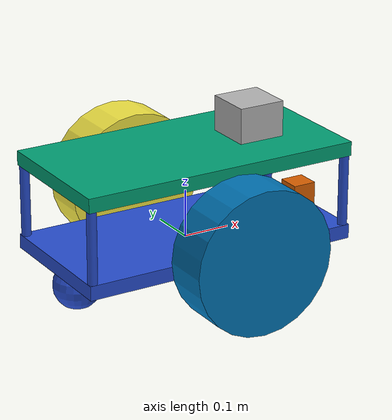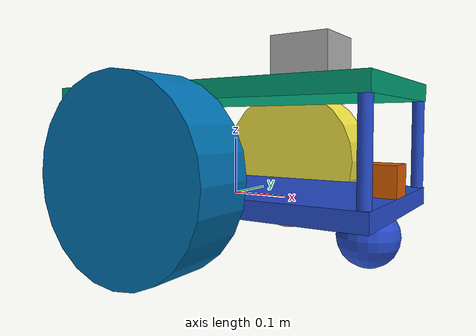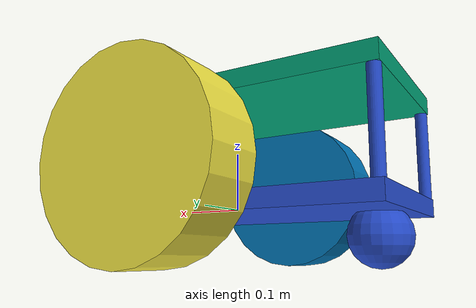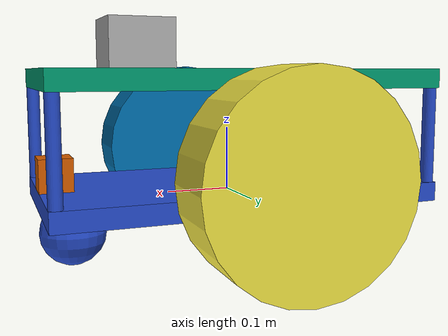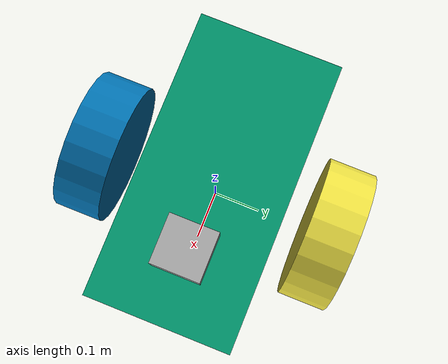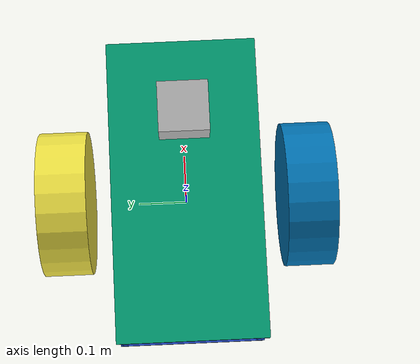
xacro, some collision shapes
<?xml version='1.0'?>

<robot name="drive_bot" xmlns:xacro="http://www.ros.org/wiki/xacro">

  <xacro:include filename="$(find drive_bot)/urdf/drive_bot.gazebo" />

  <link name="robot_footprint"></link>

  <joint name="robot_footprint_joint" type="fixed">
    <origin xyz="0 0 0" rpy="0 0 0" />
    <parent link="robot_footprint"/>
    <child link="chassis" />
  </joint>

  <link name='chassis'>
    <pose>0 0 0.1 0 0 0</pose>

    <inertial>
      <mass value="15.0"/>
      <origin xyz="0.0 0 0" rpy=" 0 0 0"/>
      <inertia
          ixx="0.1" ixy="0" ixz="0"
          iyy="0.1" iyz="0"
          izz="0.1"
      />
    </inertial>

    <collision name='collision'>
      <origin xyz="0 0 0" rpy=" 0 0 0"/>
      <geometry>
        <box size=".6 .3 .03"/>
      </geometry>
    </collision>

    <visual name='chassis_visual'>
      <origin xyz="0 0 0" rpy=" 0 0 0"/>
      <geometry>
        <box size=".6 .3 .03"/>
      </geometry>
    </visual>

    <collision name='back_caster_collision'>
      <origin xyz="-0.25 0 -0.05" rpy=" 0 0 0"/>
      <geometry>
        <sphere radius="0.0499"/>
      </geometry>
    </collision>

    <visual name='back_caster_visual'>
      <origin xyz="-0.25 0 -0.05" rpy=" 0 0 0"/>
      <geometry>
        <sphere radius="0.05"/>
      </geometry>
    </visual>

    <collision name='front_caster_collision'>
      <origin xyz="0.25 0 -0.05" rpy=" 0 0 0"/>
      <geometry>
        <sphere radius="0.0499"/>
      </geometry>
    </collision>

    <visual name='front_caster_visual'>
      <origin xyz="0.25 0 -0.05" rpy=" 0 0 0"/>
      <geometry>
        <sphere radius="0.05"/>
      </geometry>
    </visual>

    <collision name='front_left_post_collision'>
      <origin xyz="0.29 0.14 0.09" rpy=" 0 0 0"/>
      <geometry>
        <cylinder radius="0.01" length="0.15"/>
      </geometry>
    </collision>

    <visual name='front_left_post_visual'>
      <origin xyz="0.29 0.14 0.09" rpy=" 0 0 0"/>
      <geometry>
        <cylinder radius="0.01" length="0.15"/>
      </geometry>
    </visual>

    <collision name='front_right_post_collision'>
      <origin xyz="0.29 -0.14 0.09" rpy=" 0 0 0"/>
      <geometry>
        <cylinder radius="0.01" length="0.15"/>
      </geometry>
    </collision>

    <visual name='front_right_post_visual'>
      <origin xyz="0.29 -0.14 0.09" rpy=" 0 0 0"/>
      <geometry>
        <cylinder radius="0.01" length="0.15"/>
      </geometry>
    </visual>

    <collision name='rear_left_post_collision'>
      <origin xyz="-0.29 0.14 0.09" rpy=" 0 0 0"/>
      <geometry>
        <cylinder radius="0.01" length="0.15"/>
      </geometry>
    </collision>

    <visual name='rear_left_post_visual'>
      <origin xyz="-0.29 0.14 0.09" rpy=" 0 0 0"/>
      <geometry>
        <cylinder radius="0.01" length="0.15"/>
      </geometry>
    </visual>

    <collision name='rear_right_post_collision'>
      <origin xyz="-0.29 -0.14 0.09" rpy=" 0 0 0"/>
      <geometry>
        <cylinder radius="0.01" length="0.15"/>
      </geometry>
    </collision>

    <visual name='rear_right_post_visual'>
      <origin xyz="-0.29 -0.14 0.09" rpy=" 0 0 0"/>
      <geometry>
        <cylinder radius="0.01" length="0.15"/>
      </geometry>
    </visual>

  </link>

  <gazebo reference="chassis">
    <material>Gazebo/Blue</material>
  </gazebo>

  <link name="top_plate">
    <inertial>
      <mass value="15.0"/>
      <origin xyz="0.0 0 0" rpy=" 0 0 0"/>
      <inertia
          ixx="0.1" ixy="0" ixz="0"
          iyy="0.1" iyz="0"
          izz="0.1"
      />
    </inertial>

    <collision name='collision'>
      <origin xyz="0 0 0" rpy=" 0 0 0"/>
      <geometry>
        <box size=".6 .3 .03"/>
      </geometry>
    </collision>

    <visual name='chassis_visual'>
      <origin xyz="0 0 0" rpy=" 0 0 0"/>
      <geometry>
        <box size=".6 .3 .03"/>
      </geometry>
    </visual>

  </link>

  <joint type="fixed" name="top_plate_fixed">
    <origin xyz="0 0 0.18" rpy="0 0 0"/>
    <child link="top_plate"/>
    <parent link="chassis"/>
    <axis xyz="0 1 0" rpy="0 0 0"/>
    <dynamics damping="1.0" friction="1.0"/>
  </joint>

  <link name='rear_left_wheel'>
    <inertial>
      <mass value="2.0"/>
      <origin xyz="0 0 0" rpy="0 1.5707 1.5707"/>
      <inertia
          ixx="0.1" ixy="0" ixz="0"
          iyy="0.1" iyz="0"
          izz="0.1"
      />
    </inertial>

    <collision name='rear_left_wheel_collision'>
      <origin xyz="0 0 0" rpy="0 1.5707 1.5707"/>
      <geometry>
        <cylinder radius="0.15" length="0.1"/>
      </geometry>
    </collision>

    <visual name='rear_left_wheel_visual'>
      <origin xyz="0 0 0" rpy="0 1.5707 1.5707"/>
      <geometry>
        <cylinder radius="0.15" length="0.1"/>
      </geometry>
    </visual>
  </link>

  <link name='rear_right_wheel'>
    <inertial>
      <mass value="2.0"/>
      <origin xyz="0 0 0" rpy="0 1.5707 1.5707"/>
      <inertia
          ixx="0.1" ixy="0" ixz="0"
          iyy="0.1" iyz="0"
          izz="0.1"
      />
    </inertial>

    <collision name='rear_right_wheel_collision'>
      <origin xyz="0 0 0" rpy="0 1.5707 1.5707"/>
      <geometry>
        <cylinder radius="0.15" length="0.1"/>
      </geometry>
    </collision>

    <visual name='rear_right_wheel_visual'>
      <origin xyz="0 0 0" rpy=" 0 1.5707 1.5707"/>
      <geometry>
        <cylinder radius="0.15" length="0.1"/>
      </geometry>
    </visual>
  </link>

  <link name='camera_link'>
    <inertial>
      <mass value="2"/>
      <origin xyz="0 0 0" rpy="0 0 0"/>
      <inertia
          ixx="1e-6" ixy="0" ixz="0"
          iyy="1e-6" iyz="0"
          izz="1e-6"
      />
    </inertial>

    <collision name='camera_link_collision'>
      <origin xyz="0 0 0" rpy="0 0 0"/>
      <geometry>
        <box size="0.05 0.05 0.05"/>
      </geometry>
    </collision>

    <visual name='camera_link_visual'>
      <origin xyz="0 0 0" rpy=" 0 0 0"/>
      <geometry>
        <box size="0.05 0.05 0.05"/>
      </geometry>
    </visual>
  </link>

  <joint name="camera_optical_joint" type="fixed">
    <origin xyz="0 0 0" rpy="-1.5707 0 -1.5707"/>
    <parent link="camera_link"/>
    <child link="camera_link_optical"/>
  </joint>

  <link name="camera_link_optical">
  </link>

  <gazebo reference="camera">
    <material>Gazebo/Red</material>
  </gazebo>

  <link name='hokuyo'>
    <inertial>
      <mass value="1e-5"/>
      <origin xyz="0 0 0" rpy="0 0 0"/>
      <inertia
          ixx="1e-6" ixy="0" ixz="0"
          iyy="1e-6" iyz="0"
          izz="1e-6"
      />
    </inertial>

    <collision name='hokuyo_collision'>
      <origin xyz="0 0 0" rpy="0 0 0"/>
      <geometry>
        <box size="0.1 0.1 0.1"/>
      </geometry>
    </collision>

    <visual name='hokuyo_visual'>
      <origin xyz="0 0 0" rpy=" 0 0 0"/>
      <geometry>
        <mesh filename = "package://drive_bot/meshes/hokuyo.dae"/>
      </geometry>
    </visual>
  </link>

  <joint type="continuous" name="rear_left_wheel_hinge">
    <origin xyz="0 0.25 0.05" rpy="0 0 0"/>
    <child link="rear_left_wheel"/>
    <parent link="chassis"/>
    <axis xyz="0 1 0" rpy="0 0 0"/>
    <limit effort="10000" velocity="1000"/>
    <dynamics damping="1.0" friction="1.0"/>
  </joint>

  <joint type="continuous" name="rear_right_wheel_hinge">
    <origin xyz="0 -0.25 0.05" rpy="0 0 0"/>
    <child link="rear_right_wheel"/>
    <parent link="chassis"/>
    <axis xyz="0 1 0" rpy="0 0 0"/>
    <limit effort="10000" velocity="1000"/>
    <dynamics damping="1.0" friction="1.0"/>
  </joint>

  <joint type="fixed" name="camera_joint">
    <origin xyz="0.275 0 0.04" rpy="0 0 0"/>
    <child link="camera_link"/>
    <parent link="chassis"/>
    <axis xyz="0 1 0" rpy="0 0 0"/>
    <dynamics damping="1.0" friction="1.0"/>
  </joint>

  <joint type="fixed" name="hokuyo_joint">
    <origin xyz="0.15 0 0.22" rpy="0 0 0"/>
    <child link="hokuyo"/>
    <parent link="chassis"/>
    <axis xyz="0 1 0" rpy="0 0 0"/>
    <dynamics damping="1.0" friction="1.0"/>
  </joint>

</robot>
